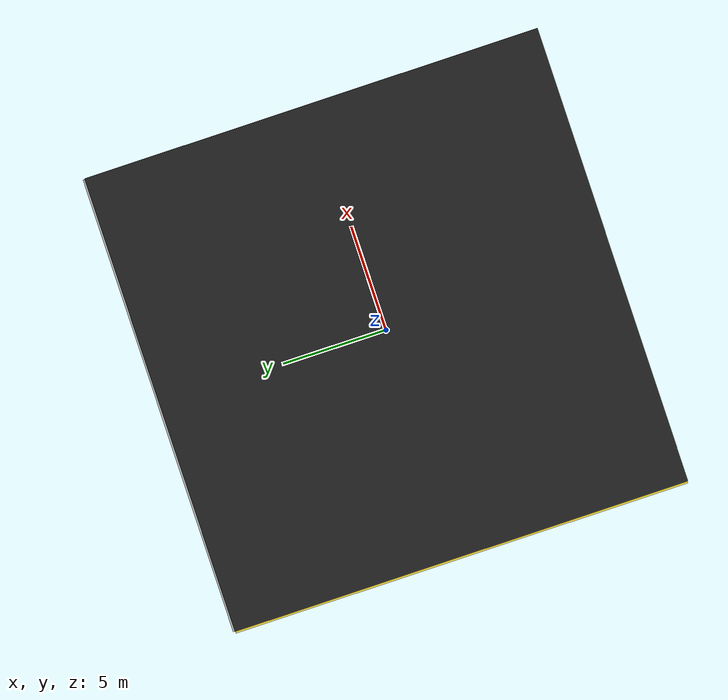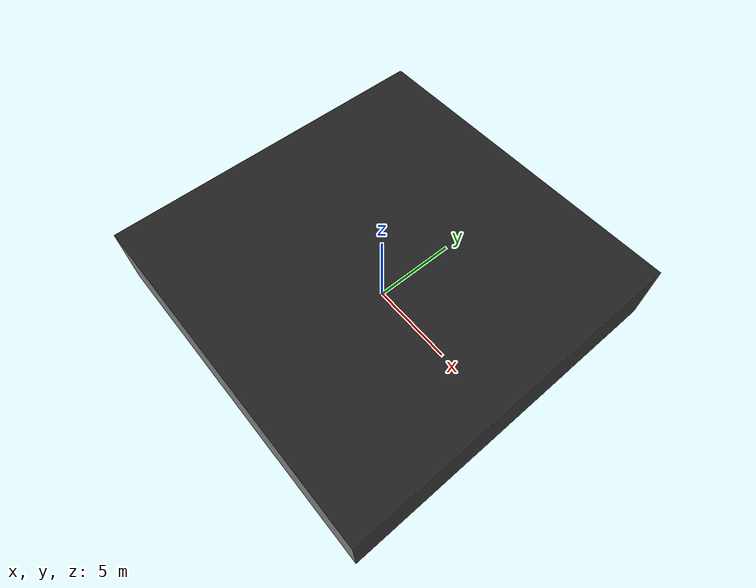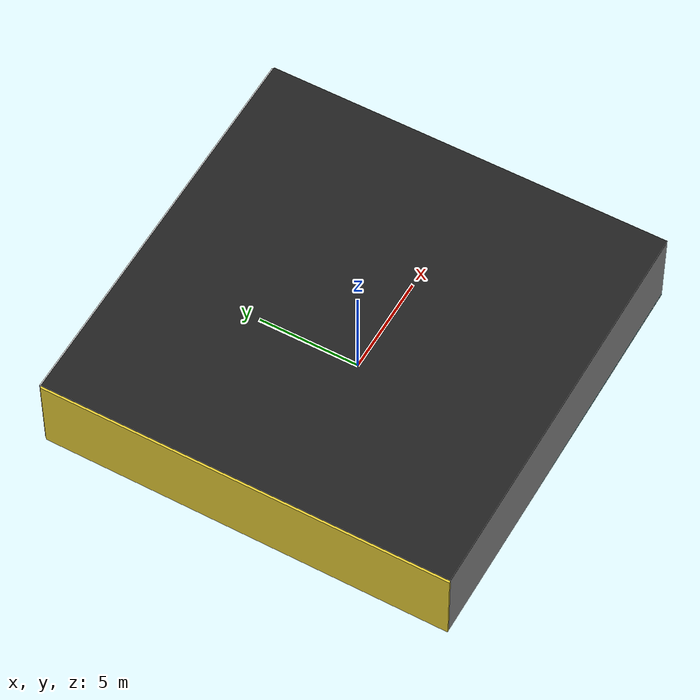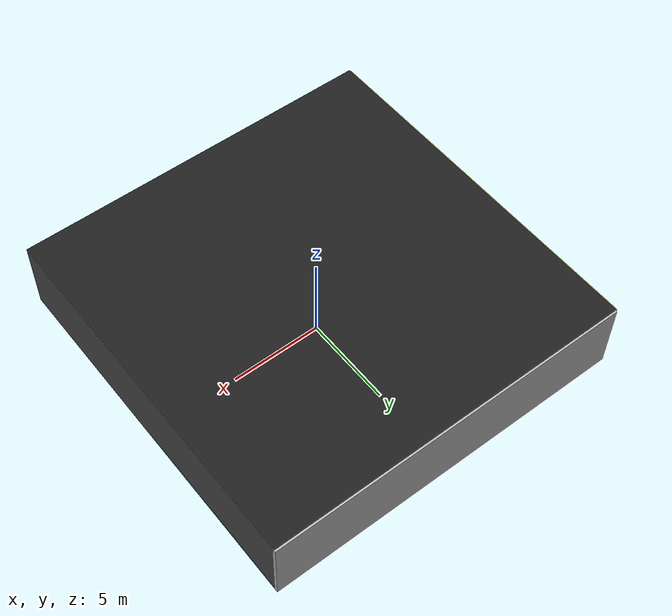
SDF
<sdf version="1.4">
 <world name="default">
  <physics type="ode">
   <max_step_size>0.001</max_step_size>
   <real_time_factor>1</real_time_factor>
   <real_time_update_rate>1000</real_time_update_rate>
   <gravity>0 0 -9.8</gravity>
  </physics>
  <scene><ambient>0.4 0.4 0.4 1</ambient><background>0.7 0.7 0.7 1</background><shadows>1</shadows></scene>
  <model name="Surrounding">
   <static>1</static>
   <link name="Ceiling">
    <collision name="Ceiling_Collision"><geometry><box><size>20 20 0.1</size></box></geometry></collision>
    <visual name="Ceiling_Visual">
     <geometry><box><size>20 20 0.1</size></box></geometry>
     <material>
      <script><uri>file://media/materials/scripts/gazebo.material</uri><name>Gazebo/FlatBlack</name></script>
     </material>
    </visual>
    <pose>0 0 4.05 0 0 0</pose>
   </link>
   <link name="Wall_South">
    <collision name="Wall_South_Collision">
     <geometry><box><size>20 0 4</size></box></geometry>
     <pose>0 0 2 0 -0 0</pose>
    </collision>
    <visual name="Wall_South_Visual">
     <pose>0 0 2 0 -0 0</pose>
     <geometry><box><size>20 0 4</size></box></geometry>
     <material>
      <script><uri>file://media/materials/scripts/gazebo.material</uri><name>Gazebo/Grey</name></script>
     </material>
    </visual>
    <velocity_decay><linear>0</linear><angular>0</angular></velocity_decay>
    <pose>0 -10 0 0 -0 0</pose>
   </link>
   <link name="Wall_East">
    <collision name="Wall_21_Collision">
     <geometry><box><size>20 0 4</size></box></geometry>
     <pose>0 0 2 0 -0 0</pose>
    </collision>
    <visual name="Wall_21_Visual">
     <pose>0 0 2 0 -0 0</pose>
     <geometry><box><size>20 0 4</size></box></geometry>
     <material>
      <script><uri>file://media/materials/scripts/gazebo.material</uri><name>Gazebo/Road</name></script>
     </material>
    </visual>
    <velocity_decay><linear>0</linear><angular>0</angular></velocity_decay>
    <pose>10 0 0 0 -0 1.5708</pose>
   </link>
   <link name="Wall_North">
    <collision name="Wall_22_Collision">
     <geometry><box><size>20 0.2 4</size></box></geometry>
     <pose>0 0 2 0 -0 0</pose>
    </collision>
    <visual name="Wall_22_Visual">
     <pose>0 0 2 0 -0 0</pose>
     <geometry><box><size>20 0.2 4</size></box></geometry>
     <material>
      <script><uri>file://media/materials/scripts/gazebo.material</uri><name>Gazebo/Pioneer2Body</name></script>
     </material>
    </visual>
    <velocity_decay><linear>0</linear><angular>0</angular></velocity_decay>
    <pose>0 10 0 0 -0 0</pose>
   </link>
   <link name="Wall_West">
    <collision name="Wall_23_Collision">
     <geometry><box><size>20 0.2 4</size></box></geometry>
     <pose>0 0 2 0 -0 0</pose>
    </collision>
    <visual name="Wall_23_Visual">
     <pose>0 0 2 0 -0 0</pose>
     <geometry><box><size>20 0.2 4</size></box></geometry>
     <material>
      <script><uri>file://media/materials/scripts/gazebo.material</uri><name>Gazebo/ZincYellow</name></script>
     </material>
    </visual>
    <velocity_decay><linear>0</linear><angular>0</angular></velocity_decay>
    <pose>-10 0 0 0 0 -1.5708</pose>
   </link>
   <link name="Ground_link">
    <collision name="collision">
     <pose>0 0 .05 0 -0 0</pose>
     <geometry><box><size>20 20 0.1</size></box></geometry>
    </collision>
    <visual name="visual">
     <pose>0 0 .05 0 -0 0</pose>
     <geometry><box><size>20 20 0.1</size></box></geometry>
     <material>
      <script><uri>file://media/materials/scripts/gazebo.material</uri><name>Gazebo/Turquoise</name></script>
     </material>
    </visual>
   </link>
   <static>1</static>
  </model>
  <spherical_coordinates>
   <surface_model>EARTH_WGS84</surface_model>
   <latitude_deg>0</latitude_deg>
   <longitude_deg>0</longitude_deg>
   <elevation>0</elevation>
   <heading_deg>0</heading_deg>
  </spherical_coordinates>
  <light name="lightball_0" type="diffuse">
   <diffuse>0.8 0.8 0.8 1</diffuse>
   <specular>0.2 0.2 0.2 1</specular>
   <attenuation>
    <range>100</range>
    <constant>0.7</constant>
    <linear>0.01</linear>
    <quadratic>0.001</quadratic>
   </attenuation>
   <direction>-0.5 0.1 -0.9</direction>
   <pose>2.10176054897 -6.88755688643 0.984250445902 0 0 0</pose>
  </light>
  <light name="lightball_1" type="diffuse">
   <diffuse>0.8 0.8 0.8 1</diffuse>
   <specular>0.2 0.2 0.2 1</specular>
   <attenuation>
    <range>100</range>
    <constant>0.7</constant>
    <linear>0.01</linear>
    <quadratic>0.001</quadratic>
   </attenuation>
   <direction>-0.5 0.1 -0.9</direction>
   <pose>-5.44052996488 -6.24579390818 3.50340214732 0 0 0</pose>
  </light>
  <light name="lightball_2" type="diffuse">
   <diffuse>0.8 0.8 0.8 1</diffuse>
   <specular>0.2 0.2 0.2 1</specular>
   <attenuation>
    <range>100</range>
    <constant>0.7</constant>
    <linear>0.01</linear>
    <quadratic>0.001</quadratic>
   </attenuation>
   <direction>-0.5 0.1 -0.9</direction>
   <pose>-9.34240578916 4.4838100909 0.543812097738 0 0 0</pose>
  </light>
  <light name="lightball_3" type="diffuse">
   <diffuse>0.8 0.8 0.8 1</diffuse>
   <specular>0.2 0.2 0.2 1</specular>
   <attenuation>
    <range>100</range>
    <constant>0.7</constant>
    <linear>0.01</linear>
    <quadratic>0.001</quadratic>
   </attenuation>
   <direction>-0.5 0.1 -0.9</direction>
   <pose>8.83657903098 -6.97773844054 2.86796544238 0 0 0</pose>
  </light>
  <include>
   <uri>model://robocup_3Dsim_goal</uri>
   <pose>-4.14673133897 0.84813508437 0 0 0 0.920458133437</pose>
  </include>
  <include>
   <uri>model://textured_shapes</uri>
   <pose>-1.99857097619 -5.22271851541 0 0 0 1.23673403506</pose>
  </include>
  <include>
   <uri>model://construction_cone</uri>
   <pose>7.06545595572 1.1440820144 0 0 0 1.78575100483</pose>
  </include>
  <include>
   <uri>model://textured_shapes</uri>
   <pose>7.2863562554 7.56856459461 0 0 0 1.85342839925</pose>
  </include>
 </world>
</sdf>

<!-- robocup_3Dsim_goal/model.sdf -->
<sdf version="1.5">
  <model name="robocup_3d_goal">
    <static>true</static>
    <link name="left_post">
      <pose>0 1.05 0.45 0 0 0</pose>
      <collision name="collision">
        <geometry>
          <cylinder>
            <radius>0.05</radius>
            <length>0.9</length>
          </cylinder>
        </geometry>
      </collision>
      <visual name="visual">
        <geometry>
          <cylinder>
            <radius>0.05</radius>
            <length>0.9</length>
          </cylinder>
        </geometry>
        <material>
          <script>
            <uri>file://media/materials/scripts/gazebo.material</uri>
            <name>Gazebo/ZincYellow</name>
          </script>
        </material>
      </visual>
    </link>
    <link name="left_support_horiz_lower">
      <pose>0.30 1.05 0.01 0 0 0</pose>
      <collision name="collision">
        <geometry>
          <box>
            <size>0.50 0.02 0.02</size>
          </box>
        </geometry>
      </collision>
      <visual name="visual">
        <geometry>
          <box>
            <size>0.50 0.02 0.02</size>
          </box>
        </geometry>
        <material>
          <script>
            <uri>file://media/materials/scripts/gazebo.material</uri>
            <name>Gazebo/White</name>
          </script>
        </material>
      </visual>
    </link>
    <link name="left_support_horiz_upper">
      <pose>0.30 1.05 0.79 0 0 0</pose>
      <collision name="collision">
        <geometry>
          <box>
            <size>0.50 0.02 0.02</size>
          </box>
        </geometry>
      </collision>
      <visual name="visual">
        <geometry>
          <box>
            <size>0.50 0.02 0.02</size>
          </box>
        </geometry>
        <material>
          <script>
            <uri>file://media/materials/scripts/gazebo.material</uri>
            <name>Gazebo/White</name>
          </script>
        </material>
      </visual>
    </link>
    <link name="left_support_vertical">
      <pose>0.56 1.05 0.4 0 1.5708 0</pose>
      <collision name="collision">
        <geometry>
          <box>
            <size>0.80 0.02 0.02</size>
          </box>
        </geometry>
      </collision>
      <visual name="visual">
        <geometry>
          <box>
            <size>0.80 0.02 0.02</size>
          </box>
        </geometry>
        <material>
          <script>
            <uri>file://media/materials/scripts/gazebo.material</uri>
            <name>Gazebo/White</name>
          </script>
        </material>
      </visual>
    </link>
    <link name="right_support_horiz_lower">
      <pose>0.30 -1.05 0.01 0 0 0</pose>
      <collision name="collision">
        <geometry>
          <box>
            <size>0.50 0.02 0.02</size>
          </box>
        </geometry>
      </collision>
      <visual name="visual">
        <geometry>
          <box>
            <size>0.50 0.02 0.02</size>
          </box>
        </geometry>
        <material>
          <script>
            <uri>file://media/materials/scripts/gazebo.material</uri>
            <name>Gazebo/White</name>
          </script>
        </material>
      </visual>
    </link>
    <link name="right_support_horiz_upper">
      <pose>0.30 -1.05 0.79 0 0 0</pose>
      <collision name="collision">
        <geometry>
          <box>
            <size>0.50 0.02 0.02</size>
          </box>
        </geometry>
      </collision>
      <visual name="visual">
        <geometry>
          <box>
            <size>0.50 0.02 0.02</size>
          </box>
        </geometry>
        <material>
          <script>
            <uri>file://media/materials/scripts/gazebo.material</uri>
            <name>Gazebo/White</name>
          </script>
        </material>
      </visual>
    </link>
    <link name="right_support_vertical">
      <pose>0.56 -1.05 0.4 0 1.5708 0</pose>
      <collision name="collision">
        <geometry>
          <box>
            <size>0.80 0.02 0.02</size>
          </box>
        </geometry>
      </collision>
      <visual name="visual">
        <geometry>
          <box>
            <size>0.80 0.02 0.02</size>
          </box>
        </geometry>
        <material>
          <script>
            <uri>file://media/materials/scripts/gazebo.material</uri>
            <name>Gazebo/White</name>
          </script>
        </material>
      </visual>
    </link>
    <link name="center_support_horiz_lower">
      <pose>0.56 0 0.01 0 1.5708 0</pose>
      <collision name="collision">
        <geometry>
          <box>
            <size>0.02 2.08 0.02</size>
          </box>
        </geometry>
      </collision>
      <visual name="visual">
        <geometry>
          <box>
            <size>0.02 2.08 0.02</size>
          </box>
        </geometry>
        <material>
          <script>
            <uri>file://media/materials/scripts/gazebo.material</uri>
            <name>Gazebo/White</name>
          </script>
        </material>
      </visual>
    </link>
    <link name="center_support_horiz_upper">
      <pose>0.56 0 0.79 0 1.5708 0</pose>
      <collision name="collision">
        <geometry>
          <box>
            <size>0.02 2.08 0.02</size>
          </box>
        </geometry>
      </collision>
      <visual name="visual">
        <geometry>
          <box>
            <size>0.02 2.08 0.02</size>
          </box>
        </geometry>
        <material>
          <script>
            <uri>file://media/materials/scripts/gazebo.material</uri>
            <name>Gazebo/White</name>
          </script>
        </material>
      </visual>
    </link>
    <link name="right_post">
      <pose>0 -1.05 0.45 0 0 0</pose>
      <collision name="collision">
        <geometry>
          <cylinder>
            <radius>0.05</radius>
            <length>0.9</length>
          </cylinder>
        </geometry>
      </collision>
      <visual name="visual">
        <geometry>
          <cylinder>
            <radius>0.05</radius>
            <length>0.9</length>
          </cylinder>
        </geometry>
        <material>
          <script>
            <uri>file://media/materials/scripts/gazebo.material</uri>
            <name>Gazebo/ZincYellow</name>
          </script>
        </material>
      </visual>
    </link>
    <link name="crossbar">
      <pose>0 0 0.85 1.57 1.57 0</pose>
      <collision name="collision">
        <geometry>
          <cylinder>
            <radius>0.05</radius>
            <length>2.0</length>
          </cylinder>
        </geometry>
      </collision>
      <visual name="visual">
        <geometry>
          <cylinder>
            <radius>0.05</radius>
            <length>2.0</length>
          </cylinder>
        </geometry>
        <material>
          <script>
            <uri>file://media/materials/scripts/gazebo.material</uri>
            <name>Gazebo/ZincYellow</name>
          </script>
        </material>
      </visual>
    </link>
    <link name="center_net">
      <pose>0.56 0 0.40 0 0 0</pose>
      <collision name="collision">
        <geometry>
          <box>
            <size>0.01 2.1 0.80</size>
          </box>
        </geometry>
      </collision>
      <visual name="visual">
        <geometry>
          <box>
            <size>0.01 2.1 0.80</size>
          </box>
        </geometry>
        <material>
          <script>
            <uri>model://../model_source/models/robocup09_spl_field/materials/scripts/</uri>
            <uri>model://../model_source/models/robocup09_spl_field/materials/textures/</uri>
            <name>RoboCup/Net</name>
          </script>
        </material>
      </visual>
    </link>
    <link name="left_net">
      <pose>0.30 1.05 0.40 0 0 0</pose>
      <collision name="collision">
        <geometry>
          <box>
            <size>0.50 0.01 0.76</size>
          </box>
        </geometry>
      </collision>
      <visual name="visual">
        <geometry>
          <box>
            <size>0.50 0.01 0.76</size>
          </box>
        </geometry>
        <material>
          <script>
            <uri>model://../model_source/models/robocup09_spl_field/materials/scripts/</uri>
            <uri>model://../model_source/models/robocup09_spl_field/materials/textures/</uri>
            <name>RoboCup/Net</name>
          </script>
        </material>
      </visual>
    </link>
    <link name="right_net">
      <pose>0.30 -1.05 0.40 0 0 0</pose>
      <collision name="collision">
        <geometry>
          <box>
            <size>0.50 0.01 0.76</size>
          </box>
        </geometry>
      </collision>
      <visual name="visual">
        <geometry>
          <box>
            <size>0.50 0.01 0.76</size>
          </box>
        </geometry>
        <material>
          <script>
            <uri>model://../model_source/models/robocup09_spl_field/materials/scripts/</uri>
            <uri>model://../model_source/models/robocup09_spl_field/materials/textures/</uri>
            <name>RoboCup/Net</name>
          </script>
        </material>
      </visual>
    </link>
  </model>
</sdf>

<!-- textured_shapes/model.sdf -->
<sdf version="1.6">
  <model name="textured_shapes">
    <pose>0 0 0.5 0 0 0</pose>
    <link name="box">
      <pose>0 -1.5 0 0 0 0</pose>
      <collision name="collision">
        <geometry>
          <box>
            <size>1 1 1</size>
          </box>
        </geometry>
      </collision>
      <visual name="visual">
        <geometry>
          <box>
            <size>1 1 1</size>
          </box>
        </geometry>
        <material>
          <script>
            <uri>model://../model_source/models/textured_shapes/materials/scripts</uri>
            <uri>model://../model_source/models/textured_shapes/materials/textures</uri>
            <name>TexturedShape/Squares</name>
          </script>
        </material>
      </visual>
    </link>
    <link name="sphere">
      <collision name="collision">
        <geometry>
          <sphere>
            <radius>0.5</radius>
          </sphere>
        </geometry>
      </collision>
      <visual name="visual">
        <geometry>
          <sphere>
            <radius>0.5</radius>
          </sphere>
        </geometry>
        <material>
          <script>
            <uri>model://../model_source/models/textured_shapes/materials/scripts</uri>
            <uri>model://../model_source/models/textured_shapes/materials/textures</uri>
            <name>TexturedShape/Squares</name>
          </script>
        </material>
      </visual>
    </link>
    <link name="cylinder">
      <pose>0 1.5 0 0 0 0</pose>
      <collision name="collision">
        <geometry>
          <cylinder>
            <radius>0.5</radius>
            <length>1</length>
          </cylinder>
        </geometry>
      </collision>
      <visual name="visual">
        <geometry>
          <cylinder>
            <radius>0.5</radius>
            <length>1</length>
          </cylinder>
        </geometry>
        <material>
          <script>
            <uri>model://../model_source/models/textured_shapes/materials/scripts</uri>
            <uri>model://../model_source/models/textured_shapes/materials/textures</uri>
            <name>TexturedShape/Squares</name>
          </script>
        </material>
      </visual>
    </link>
  </model>
</sdf>

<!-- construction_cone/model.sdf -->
<sdf version="1.5">
  <model name="Construction Cone">
    <link name="link">
      <collision name="collision">
        <geometry>
          <mesh>
            <scale>10 10 10</scale>
            <uri>file://isr-testbed/construction_cone/meshes/construction_cone.dae</uri>
          </mesh>
        </geometry>
      </collision>
      <visual name="visual">
        <geometry>
          <mesh>
            <scale>10 10 10</scale>
            <uri>file://isr-testbed/construction_cone/meshes/construction_cone.dae</uri>
          </mesh>
        </geometry>
      </visual>
    </link>
  </model>
</sdf>
